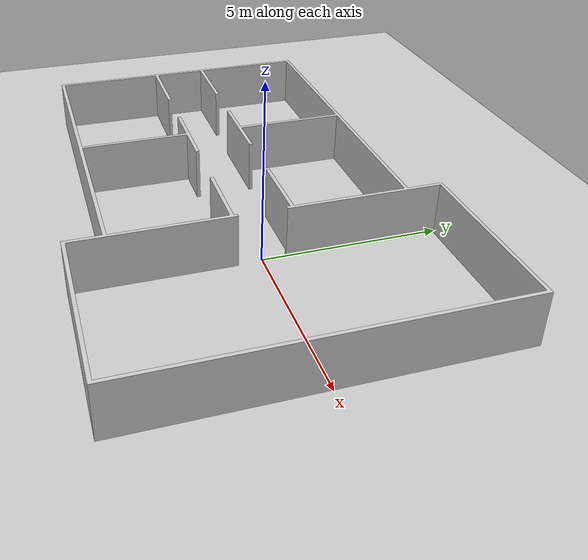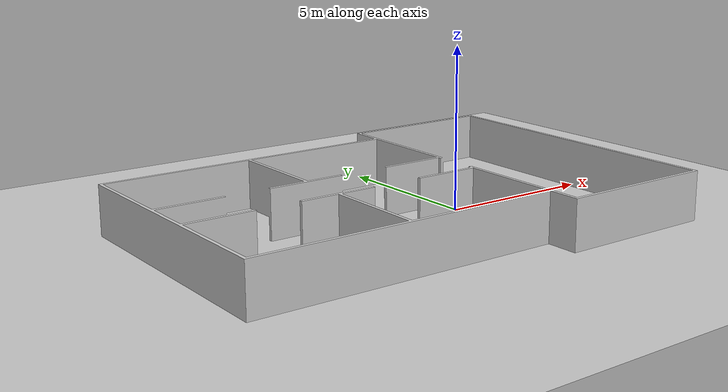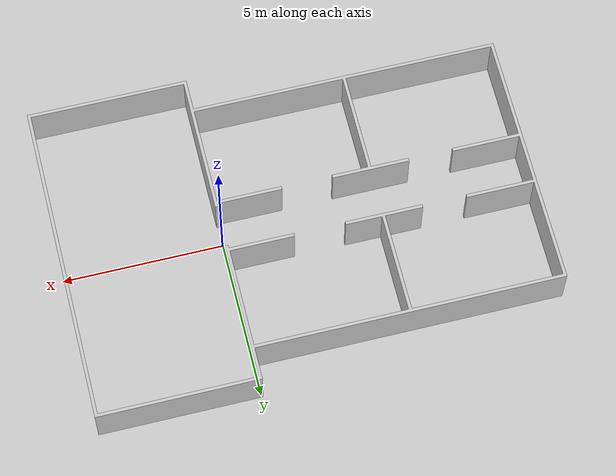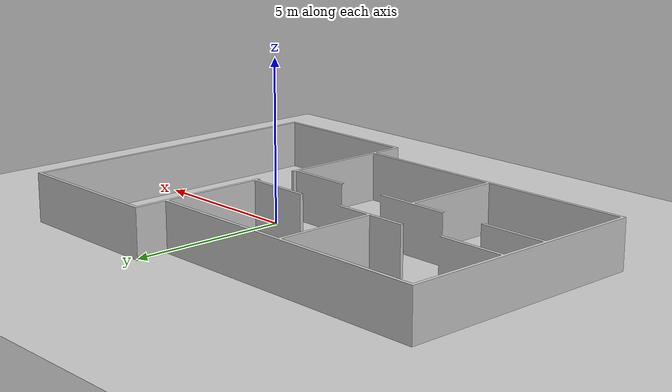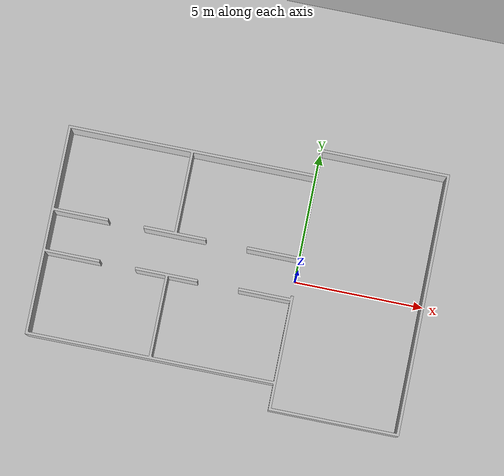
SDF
<sdf version="1.5">
    <world name="default">
        <!-- A global light source -->
        <include>
            <uri>model://sun</uri>
        </include>

        <!-- A ground plane -->
        <include>
            <uri>model://ground_plane</uri>
        </include>
        <gravity>0 0 -9.8</gravity>
        <physics type="ode">
          <real_time_update_rate>1000.0</real_time_update_rate>
          <max_step_size>0.001</max_step_size>
          <real_time_factor>1</real_time_factor>
          <ode>
            <solver>
            <type>quick</type>
            <iters>150</iters>
            <precon_iters>0</precon_iters>
            <sor>1.400000</sor>
            <use_dynamic_moi_rescaling>1</use_dynamic_moi_rescaling>
            </solver>
            <constraints>
            <cfm>0.00001</cfm>
            <erp>0.2</erp>
            <contact_max_correcting_vel>2000.000000</contact_max_correcting_vel>
            <contact_surface_layer>0.01000</contact_surface_layer>
            </constraints>
          </ode>
        </physics>
        <scene>
            <ambient>0.4 0.4 0.4 1</ambient>
            <background>0.7 0.7 0.7 1</background>
            <shadows>false</shadows>
        </scene>
        <include>
            <uri>model://straight_corridor</uri>
            <pose>0 0 0 0 0 0</pose>
        </include>
        <gui fullscreen='0'>
            <camera name='user_camera'>
                <pose frame=''>-11.3195 0.027102 21.6494 0 1.18764 0.004264</pose>
                <view_controller>orbit</view_controller>
                <projection_type>perspective</projection_type>
            </camera>
        </gui>
    </world>
</sdf>

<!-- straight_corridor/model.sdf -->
<sdf version="1.5">
  <model name='straight_corridor'>
            <static>1</static>
            <pose frame=''>0 0 0 0 0 0</pose>
            <link name='walls'>
                <collision name='collision'>
                    <geometry>
                        <mesh>
                            <uri>model://straight_corridor/meshes/straight_corridor.dae</uri>
                        </mesh>
                    </geometry>
                <max_contacts>10</max_contacts>
                </collision>
                <visual name='visual'>
                    <geometry>
                        <mesh>
                            <uri>model://straight_corridor/meshes/straight_corridor.dae</uri>
                        </mesh>
                    </geometry>
                <cast_shadows>0</cast_shadows>
                </visual>
                    <self_collide>0</self_collide>
                    <enable_wind>0</enable_wind>
                    <kinematic>0</kinematic>
            </link>
        </model>
</sdf>
